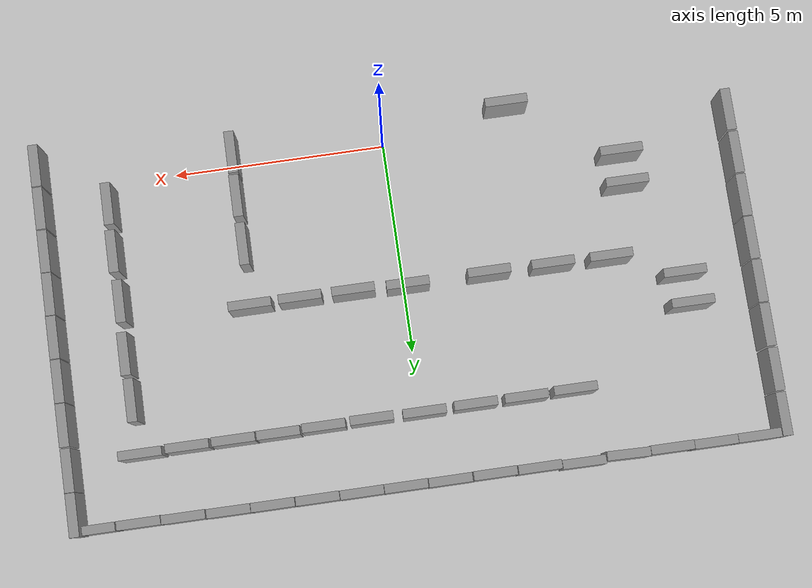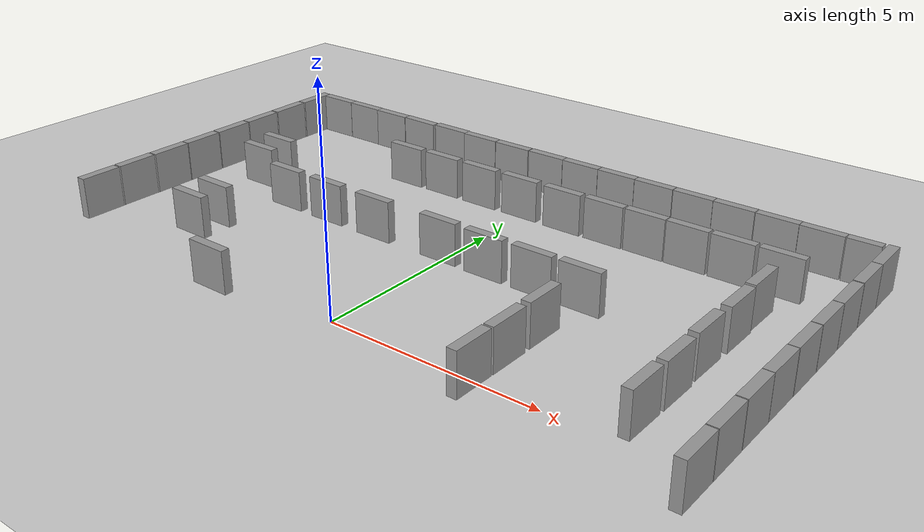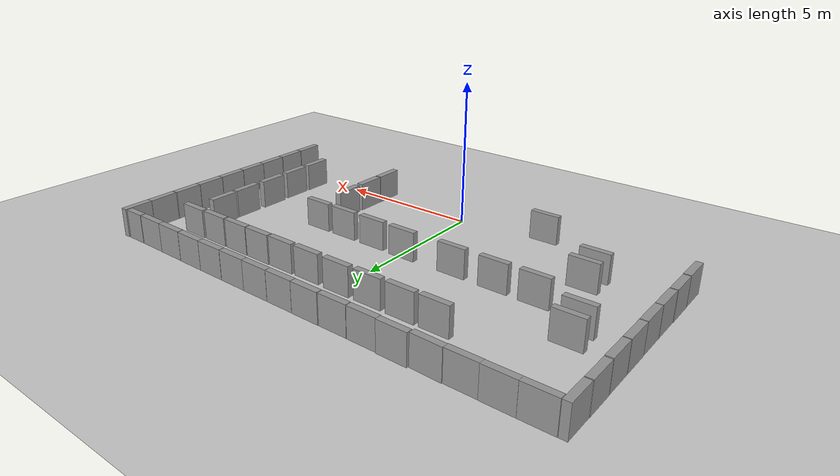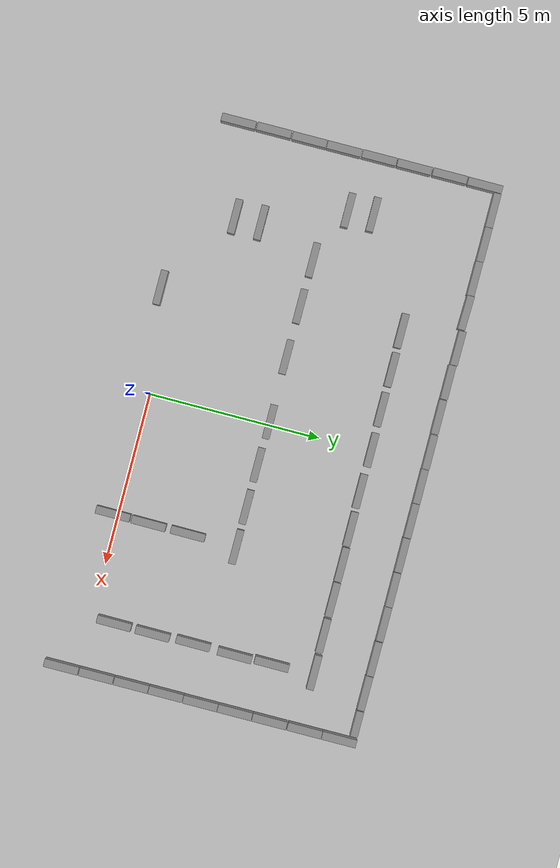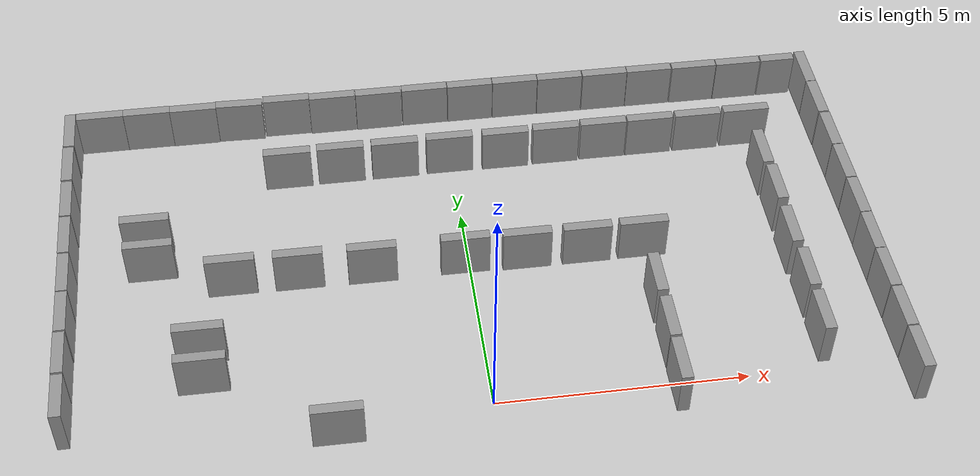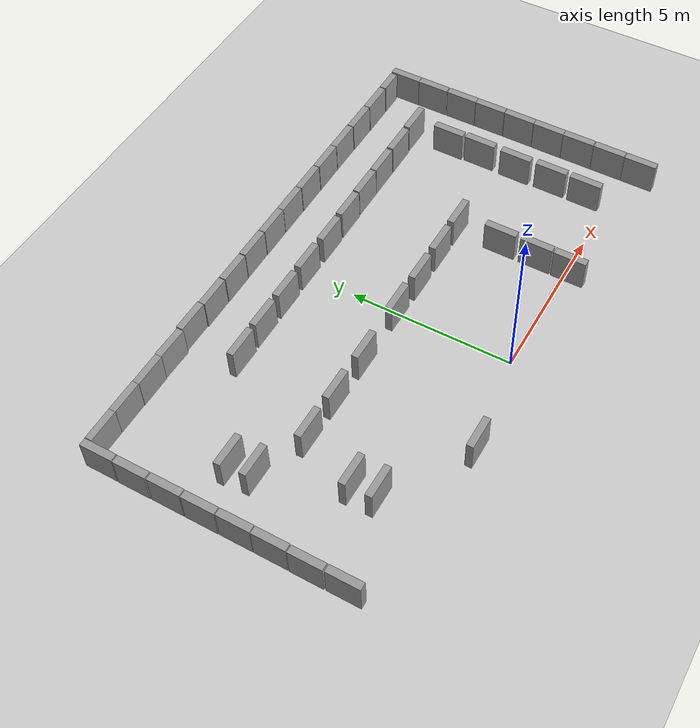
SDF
<sdf version="1.6">
 <world name="default">
  <model name="ground_plane">
   <static>1</static>
   <static>1</static>
   <link name="link">
    <collision name="collision">
     <geometry><plane><normal>0 0 1</normal><size>100 100</size></plane></geometry>
     <surface><friction><ode><mu>100</mu><mu2>50</mu2></ode></friction></surface>
    </collision>
    <visual name="visual">
     <cast_shadows>0</cast_shadows>
     <geometry><plane><normal>0 0 1</normal><size>100 100</size></plane></geometry>
     <material>
      <script><uri>file://media/materials/scripts/gazebo.material</uri><name>Gazebo/Grey</name></script>
     </material>
    </visual>
   </link>
  </model>
  <model name="unit_box_clone">
   <pose>-7.49845 8.12 0.5 0 -0 0.000368</pose>
   <link name="link">
    <inertial>
     <mass>1</mass>
     <inertia>
      <ixx>0.166667</ixx>
      <ixy>0</ixy>
      <ixz>0</ixz>
      <iyy>0.166667</iyy>
      <iyz>0</iyz>
      <izz>0.166667</izz>
     </inertia>
    </inertial>
    <collision name="collision"><geometry><box><size>1 0.210541 1</size></box></geometry></collision>
    <visual name="visual">
     <geometry><box><size>1 0.210541 1</size></box></geometry>
     <material>
      <script><name>Gazebo/Grey</name><uri>file://media/materials/scripts/gazebo.material</uri></script>
     </material>
    </visual>
   </link>
  </model>
  <model name="unit_box_clone_0">
   <pose>-6.49722 8.11979 0.5 0 -0 -0.00265</pose>
   <link name="link">
    <inertial>
     <mass>1</mass>
     <inertia>
      <ixx>0.166667</ixx>
      <ixy>0</ixy>
      <ixz>0</ixz>
      <iyy>0.166667</iyy>
      <iyz>0</iyz>
      <izz>0.166667</izz>
     </inertia>
    </inertial>
    <collision name="collision"><geometry><box><size>1 0.210541 1</size></box></geometry></collision>
    <visual name="visual">
     <geometry><box><size>1 0.210541 1</size></box></geometry>
     <material>
      <script><name>Gazebo/Grey</name><uri>file://media/materials/scripts/gazebo.material</uri></script>
     </material>
    </visual>
   </link>
  </model>
  <model name="unit_box_clone_1">
   <pose>-5.49725 8.10831 0.5 0 -0 -0.00265</pose>
   <link name="link">
    <inertial>
     <mass>1</mass>
     <inertia>
      <ixx>0.166667</ixx>
      <ixy>0</ixy>
      <ixz>0</ixz>
      <iyy>0.166667</iyy>
      <iyz>0</iyz>
      <izz>0.166667</izz>
     </inertia>
    </inertial>
    <collision name="collision"><geometry><box><size>1 0.210541 1</size></box></geometry></collision>
    <visual name="visual">
     <geometry><box><size>1 0.210541 1</size></box></geometry>
     <material>
      <script><name>Gazebo/Grey</name><uri>file://media/materials/scripts/gazebo.material</uri></script>
     </material>
    </visual>
   </link>
  </model>
  <model name="unit_box_clone_2">
   <pose>-4.49476 8.11056 0.5 0 -0 -0.026966</pose>
   <link name="link">
    <inertial>
     <mass>1</mass>
     <inertia>
      <ixx>0.166667</ixx>
      <ixy>0</ixy>
      <ixz>0</ixz>
      <iyy>0.166667</iyy>
      <iyz>0</iyz>
      <izz>0.166667</izz>
     </inertia>
    </inertial>
    <collision name="collision"><geometry><box><size>1 0.210541 1</size></box></geometry></collision>
    <visual name="visual">
     <geometry><box><size>1 0.210541 1</size></box></geometry>
     <material>
      <script><name>Gazebo/Grey</name><uri>file://media/materials/scripts/gazebo.material</uri></script>
     </material>
    </visual>
   </link>
  </model>
  <model name="unit_box_clone_3">
   <pose>-3.46833 8.14907 0.5 0 0 -0.008185</pose>
   <link name="link">
    <inertial>
     <mass>1</mass>
     <inertia>
      <ixx>0.166667</ixx>
      <ixy>0</ixy>
      <ixz>0</ixz>
      <iyy>0.166667</iyy>
      <iyz>0</iyz>
      <izz>0.166667</izz>
     </inertia>
    </inertial>
    <collision name="collision"><geometry><box><size>1 0.210541 1</size></box></geometry></collision>
    <visual name="visual">
     <geometry><box><size>1 0.210541 1</size></box></geometry>
     <material>
      <script><name>Gazebo/Grey</name><uri>file://media/materials/scripts/gazebo.material</uri></script>
     </material>
    </visual>
   </link>
  </model>
  <model name="unit_box_clone_4">
   <pose>-2.46316 8.11869 0.5 0 -0 0.000368</pose>
   <link name="link">
    <inertial>
     <mass>1</mass>
     <inertia>
      <ixx>0.166667</ixx>
      <ixy>0</ixy>
      <ixz>0</ixz>
      <iyy>0.166667</iyy>
      <iyz>0</iyz>
      <izz>0.166667</izz>
     </inertia>
    </inertial>
    <collision name="collision"><geometry><box><size>1 0.210541 1</size></box></geometry></collision>
    <visual name="visual">
     <geometry><box><size>1 0.210541 1</size></box></geometry>
     <material>
      <script><name>Gazebo/Grey</name><uri>file://media/materials/scripts/gazebo.material</uri></script>
     </material>
    </visual>
   </link>
  </model>
  <model name="unit_box_clone_5">
   <pose>-1.44425 8.11203 0.5 0 -0 0.000368</pose>
   <link name="link">
    <inertial>
     <mass>1</mass>
     <inertia>
      <ixx>0.166667</ixx>
      <ixy>0</ixy>
      <ixz>0</ixz>
      <iyy>0.166667</iyy>
      <iyz>0</iyz>
      <izz>0.166667</izz>
     </inertia>
    </inertial>
    <collision name="collision"><geometry><box><size>1 0.210541 1</size></box></geometry></collision>
    <visual name="visual">
     <geometry><box><size>1 0.210541 1</size></box></geometry>
     <material>
      <script><name>Gazebo/Grey</name><uri>file://media/materials/scripts/gazebo.material</uri></script>
     </material>
    </visual>
   </link>
  </model>
  <model name="unit_box_clone_6">
   <pose>-0.418678 8.11869 0.5 0 -0 0.000368</pose>
   <link name="link">
    <inertial>
     <mass>1</mass>
     <inertia>
      <ixx>0.166667</ixx>
      <ixy>0</ixy>
      <ixz>0</ixz>
      <iyy>0.166667</iyy>
      <iyz>0</iyz>
      <izz>0.166667</izz>
     </inertia>
    </inertial>
    <collision name="collision"><geometry><box><size>1 0.210541 1</size></box></geometry></collision>
    <visual name="visual">
     <geometry><box><size>1 0.210541 1</size></box></geometry>
     <material>
      <script><name>Gazebo/Grey</name><uri>file://media/materials/scripts/gazebo.material</uri></script>
     </material>
    </visual>
   </link>
  </model>
  <model name="unit_box_clone_7">
   <pose>0.592841 8.11155 0.5 0 -0 0.000368</pose>
   <link name="link">
    <inertial>
     <mass>1</mass>
     <inertia>
      <ixx>0.166667</ixx>
      <ixy>0</ixy>
      <ixz>0</ixz>
      <iyy>0.166667</iyy>
      <iyz>0</iyz>
      <izz>0.166667</izz>
     </inertia>
    </inertial>
    <collision name="collision"><geometry><box><size>1 0.210541 1</size></box></geometry></collision>
    <visual name="visual">
     <geometry><box><size>1 0.210541 1</size></box></geometry>
     <material>
      <script><name>Gazebo/Grey</name><uri>file://media/materials/scripts/gazebo.material</uri></script>
     </material>
    </visual>
   </link>
  </model>
  <model name="unit_box_clone_8">
   <pose>1.60043 8.11006 0.5 0 -0 0.000368</pose>
   <link name="link">
    <inertial>
     <mass>1</mass>
     <inertia>
      <ixx>0.166667</ixx>
      <ixy>0</ixy>
      <ixz>0</ixz>
      <iyy>0.166667</iyy>
      <iyz>0</iyz>
      <izz>0.166667</izz>
     </inertia>
    </inertial>
    <collision name="collision"><geometry><box><size>1 0.210541 1</size></box></geometry></collision>
    <visual name="visual">
     <geometry><box><size>1 0.210541 1</size></box></geometry>
     <material>
      <script><name>Gazebo/Grey</name><uri>file://media/materials/scripts/gazebo.material</uri></script>
     </material>
    </visual>
   </link>
  </model>
  <model name="unit_box_clone_9">
   <pose>2.60987 8.10287 0.5 0 -0 0.000368</pose>
   <link name="link">
    <inertial>
     <mass>1</mass>
     <inertia>
      <ixx>0.166667</ixx>
      <ixy>0</ixy>
      <ixz>0</ixz>
      <iyy>0.166667</iyy>
      <iyz>0</iyz>
      <izz>0.166667</izz>
     </inertia>
    </inertial>
    <collision name="collision"><geometry><box><size>1 0.210541 1</size></box></geometry></collision>
    <visual name="visual">
     <geometry><box><size>1 0.210541 1</size></box></geometry>
     <material>
      <script><name>Gazebo/Grey</name><uri>file://media/materials/scripts/gazebo.material</uri></script>
     </material>
    </visual>
   </link>
  </model>
  <model name="unit_box_clone_10">
   <pose>3.62649 8.09929 0.5 0 -0 0.000368</pose>
   <link name="link">
    <inertial>
     <mass>1</mass>
     <inertia>
      <ixx>0.166667</ixx>
      <ixy>0</ixy>
      <ixz>0</ixz>
      <iyy>0.166667</iyy>
      <iyz>0</iyz>
      <izz>0.166667</izz>
     </inertia>
    </inertial>
    <collision name="collision"><geometry><box><size>1 0.210541 1</size></box></geometry></collision>
    <visual name="visual">
     <geometry><box><size>1 0.210541 1</size></box></geometry>
     <material>
      <script><name>Gazebo/Grey</name><uri>file://media/materials/scripts/gazebo.material</uri></script>
     </material>
    </visual>
   </link>
  </model>
  <model name="unit_box_clone_11">
   <pose>4.63309 8.09531 0.5 0 0 -0.002817</pose>
   <link name="link">
    <inertial>
     <mass>1</mass>
     <inertia>
      <ixx>0.166667</ixx>
      <ixy>0</ixy>
      <ixz>0</ixz>
      <iyy>0.166667</iyy>
      <iyz>0</iyz>
      <izz>0.166667</izz>
     </inertia>
    </inertial>
    <collision name="collision"><geometry><box><size>1 0.210541 1</size></box></geometry></collision>
    <visual name="visual">
     <geometry><box><size>1 0.210541 1</size></box></geometry>
     <material>
      <script><name>Gazebo/Grey</name><uri>file://media/materials/scripts/gazebo.material</uri></script>
     </material>
    </visual>
   </link>
  </model>
  <model name="unit_box_0_clone_0">
   <pose>8.11522 6.68459 0.5 1e-06 1e-06 -0.000267</pose>
   <link name="link">
    <inertial>
     <mass>1</mass>
     <inertia>
      <ixx>0.166667</ixx>
      <ixy>0</ixy>
      <ixz>0</ixz>
      <iyy>0.166667</iyy>
      <iyz>0</iyz>
      <izz>0.166667</izz>
     </inertia>
    </inertial>
    <collision name="collision"><geometry><box><size>0.230819 1 1</size></box></geometry></collision>
    <visual name="visual">
     <geometry><box><size>0.230819 1 1</size></box></geometry>
     <material>
      <script><name>Gazebo/Grey</name><uri>file://media/materials/scripts/gazebo.material</uri></script>
     </material>
    </visual>
   </link>
  </model>
  <model name="unit_box_0_clone_1">
   <pose>8.11915 5.6517 0.5 -1e-06 1e-06 0.000146</pose>
   <link name="link">
    <inertial>
     <mass>1</mass>
     <inertia>
      <ixx>0.166667</ixx>
      <ixy>0</ixy>
      <ixz>0</ixz>
      <iyy>0.166667</iyy>
      <iyz>0</iyz>
      <izz>0.166667</izz>
     </inertia>
    </inertial>
    <collision name="collision"><geometry><box><size>0.230819 1 1</size></box></geometry></collision>
    <visual name="visual">
     <geometry><box><size>0.230819 1 1</size></box></geometry>
     <material>
      <script><name>Gazebo/Grey</name><uri>file://media/materials/scripts/gazebo.material</uri></script>
     </material>
    </visual>
   </link>
  </model>
  <model name="unit_box_0_clone_2">
   <pose>8.11914 4.64016 0.5 -1e-06 1e-06 0.000162</pose>
   <link name="link">
    <inertial>
     <mass>1</mass>
     <inertia>
      <ixx>0.166667</ixx>
      <ixy>0</ixy>
      <ixz>0</ixz>
      <iyy>0.166667</iyy>
      <iyz>0</iyz>
      <izz>0.166667</izz>
     </inertia>
    </inertial>
    <collision name="collision"><geometry><box><size>0.230819 1 1</size></box></geometry></collision>
    <visual name="visual">
     <geometry><box><size>0.230819 1 1</size></box></geometry>
     <material>
      <script><name>Gazebo/Grey</name><uri>file://media/materials/scripts/gazebo.material</uri></script>
     </material>
    </visual>
   </link>
  </model>
  <model name="unit_box_0_clone_3">
   <pose>8.11914 3.62227 0.5 1e-06 1e-06 0.000127</pose>
   <link name="link">
    <inertial>
     <mass>1</mass>
     <inertia>
      <ixx>0.166667</ixx>
      <ixy>0</ixy>
      <ixz>0</ixz>
      <iyy>0.166667</iyy>
      <iyz>0</iyz>
      <izz>0.166667</izz>
     </inertia>
    </inertial>
    <collision name="collision"><geometry><box><size>0.230819 1 1</size></box></geometry></collision>
    <visual name="visual">
     <geometry><box><size>0.230819 1 1</size></box></geometry>
     <material>
      <script><name>Gazebo/Grey</name><uri>file://media/materials/scripts/gazebo.material</uri></script>
     </material>
    </visual>
   </link>
  </model>
  <model name="unit_box_0_clone_4">
   <pose>8.11332 2.61061 0.5 1e-06 1e-06 -0.001398</pose>
   <link name="link">
    <inertial>
     <mass>1</mass>
     <inertia>
      <ixx>0.166667</ixx>
      <ixy>0</ixy>
      <ixz>0</ixz>
      <iyy>0.166667</iyy>
      <iyz>0</iyz>
      <izz>0.166667</izz>
     </inertia>
    </inertial>
    <collision name="collision"><geometry><box><size>0.230819 1 1</size></box></geometry></collision>
    <visual name="visual">
     <geometry><box><size>0.230819 1 1</size></box></geometry>
     <material>
      <script><name>Gazebo/Grey</name><uri>file://media/materials/scripts/gazebo.material</uri></script>
     </material>
    </visual>
   </link>
  </model>
  <model name="unit_box_0_clone_5">
   <pose>8.11277 1.5992 0.5 1e-06 1e-06 0.000127</pose>
   <link name="link">
    <inertial>
     <mass>1</mass>
     <inertia>
      <ixx>0.166667</ixx>
      <ixy>0</ixy>
      <ixz>0</ixz>
      <iyy>0.166667</iyy>
      <iyz>0</iyz>
      <izz>0.166667</izz>
     </inertia>
    </inertial>
    <collision name="collision"><geometry><box><size>0.230819 1 1</size></box></geometry></collision>
    <visual name="visual">
     <geometry><box><size>0.230819 1 1</size></box></geometry>
     <material>
      <script><name>Gazebo/Grey</name><uri>file://media/materials/scripts/gazebo.material</uri></script>
     </material>
    </visual>
   </link>
  </model>
  <model name="unit_box_0_clone_6">
   <pose>8.11277 0.574934 0.5 1e-06 1e-06 0.000127</pose>
   <link name="link">
    <inertial>
     <mass>1</mass>
     <inertia>
      <ixx>0.166667</ixx>
      <ixy>0</ixy>
      <ixz>0</ixz>
      <iyy>0.166667</iyy>
      <iyz>0</iyz>
      <izz>0.166667</izz>
     </inertia>
    </inertial>
    <collision name="collision"><geometry><box><size>0.230819 1 1</size></box></geometry></collision>
    <visual name="visual">
     <geometry><box><size>0.230819 1 1</size></box></geometry>
     <material>
      <script><name>Gazebo/Grey</name><uri>file://media/materials/scripts/gazebo.material</uri></script>
     </material>
    </visual>
   </link>
  </model>
  <model name="unit_box_0_clone_7">
   <pose>8.11276 -0.449324 0.5 1e-06 1e-06 0.000127</pose>
   <link name="link">
    <inertial>
     <mass>1</mass>
     <inertia>
      <ixx>0.166667</ixx>
      <ixy>0</ixy>
      <ixz>0</ixz>
      <iyy>0.166667</iyy>
      <iyz>0</iyz>
      <izz>0.166667</izz>
     </inertia>
    </inertial>
    <collision name="collision"><geometry><box><size>0.230819 1 1</size></box></geometry></collision>
    <visual name="visual">
     <geometry><box><size>0.230819 1 1</size></box></geometry>
     <material>
      <script><name>Gazebo/Grey</name><uri>file://media/materials/scripts/gazebo.material</uri></script>
     </material>
    </visual>
   </link>
  </model>
  <model name="unit_box_0_clone_4_clone">
   <pose>-8.12647 7.71769 0.5 1e-06 1e-06 0.000127</pose>
   <link name="link">
    <inertial>
     <mass>1</mass>
     <inertia>
      <ixx>0.166667</ixx>
      <ixy>0</ixy>
      <ixz>0</ixz>
      <iyy>0.166667</iyy>
      <iyz>0</iyz>
      <izz>0.166667</izz>
     </inertia>
    </inertial>
    <collision name="collision"><geometry><box><size>0.230819 1 1</size></box></geometry></collision>
    <visual name="visual">
     <geometry><box><size>0.230819 1 1</size></box></geometry>
     <material>
      <script><name>Gazebo/Grey</name><uri>file://media/materials/scripts/gazebo.material</uri></script>
     </material>
    </visual>
   </link>
  </model>
  <model name="unit_box_0_clone_4_clone_0">
   <pose>-8.13281 6.68715 0.5 1e-06 1e-06 0.000127</pose>
   <link name="link">
    <inertial>
     <mass>1</mass>
     <inertia>
      <ixx>0.166667</ixx>
      <ixy>0</ixy>
      <ixz>0</ixz>
      <iyy>0.166667</iyy>
      <iyz>0</iyz>
      <izz>0.166667</izz>
     </inertia>
    </inertial>
    <collision name="collision"><geometry><box><size>0.230819 1 1</size></box></geometry></collision>
    <visual name="visual">
     <geometry><box><size>0.230819 1 1</size></box></geometry>
     <material>
      <script><name>Gazebo/Grey</name><uri>file://media/materials/scripts/gazebo.material</uri></script>
     </material>
    </visual>
   </link>
  </model>
  <model name="unit_box_0_clone_4_clone_1">
   <pose>-8.12606 5.64723 0.5 1e-06 1e-06 0.000127</pose>
   <link name="link">
    <inertial>
     <mass>1</mass>
     <inertia>
      <ixx>0.166667</ixx>
      <ixy>0</ixy>
      <ixz>0</ixz>
      <iyy>0.166667</iyy>
      <iyz>0</iyz>
      <izz>0.166667</izz>
     </inertia>
    </inertial>
    <collision name="collision"><geometry><box><size>0.230819 1 1</size></box></geometry></collision>
    <visual name="visual">
     <geometry><box><size>0.230819 1 1</size></box></geometry>
     <material>
      <script><name>Gazebo/Grey</name><uri>file://media/materials/scripts/gazebo.material</uri></script>
     </material>
    </visual>
   </link>
  </model>
  <model name="unit_box_0_clone_4_clone_2">
   <pose>-8.12607 4.62081 0.5 1e-06 1e-06 0.000127</pose>
   <link name="link">
    <inertial>
     <mass>1</mass>
     <inertia>
      <ixx>0.166667</ixx>
      <ixy>0</ixy>
      <ixz>0</ixz>
      <iyy>0.166667</iyy>
      <iyz>0</iyz>
      <izz>0.166667</izz>
     </inertia>
    </inertial>
    <collision name="collision"><geometry><box><size>0.230819 1 1</size></box></geometry></collision>
    <visual name="visual">
     <geometry><box><size>0.230819 1 1</size></box></geometry>
     <material>
      <script><name>Gazebo/Grey</name><uri>file://media/materials/scripts/gazebo.material</uri></script>
     </material>
    </visual>
   </link>
  </model>
  <model name="unit_box_0_clone_4_clone_3">
   <pose>-8.11932 3.59439 0.5 1e-06 1e-06 0.000127</pose>
   <link name="link">
    <inertial>
     <mass>1</mass>
     <inertia>
      <ixx>0.166667</ixx>
      <ixy>0</ixy>
      <ixz>0</ixz>
      <iyy>0.166667</iyy>
      <iyz>0</iyz>
      <izz>0.166667</izz>
     </inertia>
    </inertial>
    <collision name="collision"><geometry><box><size>0.230819 1 1</size></box></geometry></collision>
    <visual name="visual">
     <geometry><box><size>0.230819 1 1</size></box></geometry>
     <material>
      <script><name>Gazebo/Grey</name><uri>file://media/materials/scripts/gazebo.material</uri></script>
     </material>
    </visual>
   </link>
  </model>
  <model name="unit_box_0_clone_4_clone_4">
   <pose>-8.11932 2.57473 0.5 1e-06 1e-06 0.000127</pose>
   <link name="link">
    <inertial>
     <mass>1</mass>
     <inertia>
      <ixx>0.166667</ixx>
      <ixy>0</ixy>
      <ixz>0</ixz>
      <iyy>0.166667</iyy>
      <iyz>0</iyz>
      <izz>0.166667</izz>
     </inertia>
    </inertial>
    <collision name="collision"><geometry><box><size>0.230819 1 1</size></box></geometry></collision>
    <visual name="visual">
     <geometry><box><size>0.230819 1 1</size></box></geometry>
     <material>
      <script><name>Gazebo/Grey</name><uri>file://media/materials/scripts/gazebo.material</uri></script>
     </material>
    </visual>
   </link>
  </model>
  <model name="unit_box_0_clone_4_clone_5">
   <pose>-8.12608 1.54156 0.5 1e-06 1e-06 0.000127</pose>
   <link name="link">
    <inertial>
     <mass>1</mass>
     <inertia>
      <ixx>0.166667</ixx>
      <ixy>0</ixy>
      <ixz>0</ixz>
      <iyy>0.166667</iyy>
      <iyz>0</iyz>
      <izz>0.166667</izz>
     </inertia>
    </inertial>
    <collision name="collision"><geometry><box><size>0.230819 1 1</size></box></geometry></collision>
    <visual name="visual">
     <geometry><box><size>0.230819 1 1</size></box></geometry>
     <material>
      <script><name>Gazebo/Grey</name><uri>file://media/materials/scripts/gazebo.material</uri></script>
     </material>
    </visual>
   </link>
  </model>
  <model name="unit_box_0_clone_4_clone_6">
   <pose>-8.11933 0.501626 0.5 1e-06 1e-06 0.000127</pose>
   <link name="link">
    <inertial>
     <mass>1</mass>
     <inertia>
      <ixx>0.166667</ixx>
      <ixy>0</ixy>
      <ixz>0</ixz>
      <iyy>0.166667</iyy>
      <iyz>0</iyz>
      <izz>0.166667</izz>
     </inertia>
    </inertial>
    <collision name="collision"><geometry><box><size>0.230819 1 1</size></box></geometry></collision>
    <visual name="visual">
     <geometry><box><size>0.230819 1 1</size></box></geometry>
     <material>
      <script><name>Gazebo/Grey</name><uri>file://media/materials/scripts/gazebo.material</uri></script>
     </material>
    </visual>
   </link>
  </model>
  <model name="unit_box_0_clone_0_clone">
   <pose>8.11438 7.69322 0.5 -1e-06 1e-06 0.000128</pose>
   <link name="link">
    <inertial>
     <mass>1</mass>
     <inertia>
      <ixx>0.166667</ixx>
      <ixy>0</ixy>
      <ixz>0</ixz>
      <iyy>0.166667</iyy>
      <iyz>0</iyz>
      <izz>0.166667</izz>
     </inertia>
    </inertial>
    <collision name="collision"><geometry><box><size>0.230819 1 1</size></box></geometry></collision>
    <visual name="visual">
     <geometry><box><size>0.230819 1 1</size></box></geometry>
     <material>
      <script><name>Gazebo/Grey</name><uri>file://media/materials/scripts/gazebo.material</uri></script>
     </material>
    </visual>
   </link>
  </model>
  <model name="unit_box_clone_11_clone">
   <pose>5.65439 8.08315 0.5 0 0 -0.00319</pose>
   <link name="link">
    <inertial>
     <mass>1</mass>
     <inertia>
      <ixx>0.166667</ixx>
      <ixy>0</ixy>
      <ixz>0</ixz>
      <iyy>0.166667</iyy>
      <iyz>0</iyz>
      <izz>0.166667</izz>
     </inertia>
    </inertial>
    <collision name="collision"><geometry><box><size>1 0.210541 1</size></box></geometry></collision>
    <visual name="visual">
     <geometry><box><size>1 0.210541 1</size></box></geometry>
     <material>
      <script><name>Gazebo/Grey</name><uri>file://media/materials/scripts/gazebo.material</uri></script>
     </material>
    </visual>
   </link>
  </model>
  <model name="unit_box_clone_11_clone_0">
   <pose>6.6644 8.0733 0.5 -0 -0 -0.003093</pose>
   <link name="link">
    <inertial>
     <mass>1</mass>
     <inertia>
      <ixx>0.166667</ixx>
      <ixy>0</ixy>
      <ixz>0</ixz>
      <iyy>0.166667</iyy>
      <iyz>0</iyz>
      <izz>0.166667</izz>
     </inertia>
    </inertial>
    <collision name="collision"><geometry><box><size>1 0.210541 1</size></box></geometry></collision>
    <visual name="visual">
     <geometry><box><size>1 0.210541 1</size></box></geometry>
     <material>
      <script><name>Gazebo/Grey</name><uri>file://media/materials/scripts/gazebo.material</uri></script>
     </material>
    </visual>
   </link>
  </model>
  <model name="unit_box_clone_11_clone_1_clone">
   <pose>7.56437 8.07322 0.499997 2e-06 -8e-06 0.001439</pose>
   <link name="link">
    <inertial>
     <mass>1</mass>
     <inertia>
      <ixx>0.166667</ixx>
      <ixy>0</ixy>
      <ixz>0</ixz>
      <iyy>0.166667</iyy>
      <iyz>0</iyz>
      <izz>0.166667</izz>
     </inertia>
    </inertial>
    <collision name="collision"><geometry><box><size>0.750223 0.210541 1</size></box></geometry></collision>
    <visual name="visual">
     <geometry><box><size>0.750223 0.210541 1</size></box></geometry>
     <material>
      <script><name>Gazebo/Grey</name><uri>file://media/materials/scripts/gazebo.material</uri></script>
     </material>
    </visual>
   </link>
  </model>
  <model name="unit_box_clone_11_clone_clone">
   <pose>6.45565 6.53019 0.5 -0 -0 -0.003103</pose>
   <link name="link">
    <inertial>
     <mass>1</mass>
     <inertia>
      <ixx>0.166667</ixx>
      <ixy>0</ixy>
      <ixz>0</ixz>
      <iyy>0.166667</iyy>
      <iyz>0</iyz>
      <izz>0.166667</izz>
     </inertia>
    </inertial>
    <collision name="collision"><geometry><box><size>1 0.210541 1</size></box></geometry></collision>
    <visual name="visual">
     <geometry><box><size>1 0.210541 1</size></box></geometry>
     <material>
      <script><name>Gazebo/Grey</name><uri>file://media/materials/scripts/gazebo.material</uri></script>
     </material>
    </visual>
   </link>
  </model>
  <model name="unit_box_clone_11_clone_clone_0">
   <pose>5.38299 6.51467 0.5 0 0 -0.003162</pose>
   <link name="link">
    <inertial>
     <mass>1</mass>
     <inertia>
      <ixx>0.166667</ixx>
      <ixy>0</ixy>
      <ixz>0</ixz>
      <iyy>0.166667</iyy>
      <iyz>0</iyz>
      <izz>0.166667</izz>
     </inertia>
    </inertial>
    <collision name="collision"><geometry><box><size>1 0.210541 1</size></box></geometry></collision>
    <visual name="visual">
     <geometry><box><size>1 0.210541 1</size></box></geometry>
     <material>
      <script><name>Gazebo/Grey</name><uri>file://media/materials/scripts/gazebo.material</uri></script>
     </material>
    </visual>
   </link>
  </model>
  <model name="unit_box_clone_11_clone_clone_1">
   <pose>4.32587 6.51468 0.5 -0 -0 -0.003062</pose>
   <link name="link">
    <inertial>
     <mass>1</mass>
     <inertia>
      <ixx>0.166667</ixx>
      <ixy>0</ixy>
      <ixz>0</ixz>
      <iyy>0.166667</iyy>
      <iyz>0</iyz>
      <izz>0.166667</izz>
     </inertia>
    </inertial>
    <collision name="collision"><geometry><box><size>1 0.210541 1</size></box></geometry></collision>
    <visual name="visual">
     <geometry><box><size>1 0.210541 1</size></box></geometry>
     <material>
      <script><name>Gazebo/Grey</name><uri>file://media/materials/scripts/gazebo.material</uri></script>
     </material>
    </visual>
   </link>
  </model>
  <model name="unit_box_clone_11_clone_clone_2">
   <pose>3.29984 6.51466 0.5 -0 -0 -0.003236</pose>
   <link name="link">
    <inertial>
     <mass>1</mass>
     <inertia>
      <ixx>0.166667</ixx>
      <ixy>0</ixy>
      <ixz>0</ixz>
      <iyy>0.166667</iyy>
      <iyz>0</iyz>
      <izz>0.166667</izz>
     </inertia>
    </inertial>
    <collision name="collision"><geometry><box><size>1 0.210541 1</size></box></geometry></collision>
    <visual name="visual">
     <geometry><box><size>1 0.210541 1</size></box></geometry>
     <material>
      <script><name>Gazebo/Grey</name><uri>file://media/materials/scripts/gazebo.material</uri></script>
     </material>
    </visual>
   </link>
  </model>
  <model name="unit_box_clone_11_clone_clone_3">
   <pose>2.25828 6.4991 0.5 0 0 -0.003047</pose>
   <link name="link">
    <inertial>
     <mass>1</mass>
     <inertia>
      <ixx>0.166667</ixx>
      <ixy>0</ixy>
      <ixz>0</ixz>
      <iyy>0.166667</iyy>
      <iyz>0</iyz>
      <izz>0.166667</izz>
     </inertia>
    </inertial>
    <collision name="collision"><geometry><box><size>1 0.210541 1</size></box></geometry></collision>
    <visual name="visual">
     <geometry><box><size>1 0.210541 1</size></box></geometry>
     <material>
      <script><name>Gazebo/Grey</name><uri>file://media/materials/scripts/gazebo.material</uri></script>
     </material>
    </visual>
   </link>
  </model>
  <model name="unit_box_clone_11_clone_clone_4">
   <pose>1.15453 6.48355 0.5 0 0 -0.003067</pose>
   <link name="link">
    <inertial>
     <mass>1</mass>
     <inertia>
      <ixx>0.166667</ixx>
      <ixy>0</ixy>
      <ixz>0</ixz>
      <iyy>0.166667</iyy>
      <iyz>0</iyz>
      <izz>0.166667</izz>
     </inertia>
    </inertial>
    <collision name="collision"><geometry><box><size>1 0.210541 1</size></box></geometry></collision>
    <visual name="visual">
     <geometry><box><size>1 0.210541 1</size></box></geometry>
     <material>
      <script><name>Gazebo/Grey</name><uri>file://media/materials/scripts/gazebo.material</uri></script>
     </material>
    </visual>
   </link>
  </model>
  <model name="unit_box_clone_11_clone_clone_5">
   <pose>-0.058049 6.49917 0.5 0 -0 -0.003116</pose>
   <link name="link">
    <inertial>
     <mass>1</mass>
     <inertia>
      <ixx>0.166667</ixx>
      <ixy>0</ixy>
      <ixz>0</ixz>
      <iyy>0.166667</iyy>
      <iyz>0</iyz>
      <izz>0.166667</izz>
     </inertia>
    </inertial>
    <collision name="collision"><geometry><box><size>1 0.210541 1</size></box></geometry></collision>
    <visual name="visual">
     <geometry><box><size>1 0.210541 1</size></box></geometry>
     <material>
      <script><name>Gazebo/Grey</name><uri>file://media/materials/scripts/gazebo.material</uri></script>
     </material>
    </visual>
   </link>
  </model>
  <model name="unit_box_clone_11_clone_clone_6">
   <pose>-1.23953 6.48361 0.5 0 0 -0.003163</pose>
   <link name="link">
    <inertial>
     <mass>1</mass>
     <inertia>
      <ixx>0.166667</ixx>
      <ixy>0</ixy>
      <ixz>0</ixz>
      <iyy>0.166667</iyy>
      <iyz>0</iyz>
      <izz>0.166667</izz>
     </inertia>
    </inertial>
    <collision name="collision"><geometry><box><size>1 0.210541 1</size></box></geometry></collision>
    <visual name="visual">
     <geometry><box><size>1 0.210541 1</size></box></geometry>
     <material>
      <script><name>Gazebo/Grey</name><uri>file://media/materials/scripts/gazebo.material</uri></script>
     </material>
    </visual>
   </link>
  </model>
  <model name="unit_box_clone_11_clone_clone_7">
   <pose>-2.40547 6.48363 0.5 -0 -0 -0.003058</pose>
   <link name="link">
    <inertial>
     <mass>1</mass>
     <inertia>
      <ixx>0.166667</ixx>
      <ixy>0</ixy>
      <ixz>0</ixz>
      <iyy>0.166667</iyy>
      <iyz>0</iyz>
      <izz>0.166667</izz>
     </inertia>
    </inertial>
    <collision name="collision"><geometry><box><size>1 0.210541 1</size></box></geometry></collision>
    <visual name="visual">
     <geometry><box><size>1 0.210541 1</size></box></geometry>
     <material>
      <script><name>Gazebo/Grey</name><uri>file://media/materials/scripts/gazebo.material</uri></script>
     </material>
    </visual>
   </link>
  </model>
  <model name="unit_box_clone_11_clone_clone_8">
   <pose>-3.54032 6.46807 0.5 -0 -0 -0.003114</pose>
   <link name="link">
    <inertial>
     <mass>1</mass>
     <inertia>
      <ixx>0.166667</ixx>
      <ixy>0</ixy>
      <ixz>0</ixz>
      <iyy>0.166667</iyy>
      <iyz>0</iyz>
      <izz>0.166667</izz>
     </inertia>
    </inertial>
    <collision name="collision"><geometry><box><size>1 0.210541 1</size></box></geometry></collision>
    <visual name="visual">
     <geometry><box><size>1 0.210541 1</size></box></geometry>
     <material>
      <script><name>Gazebo/Grey</name><uri>file://media/materials/scripts/gazebo.material</uri></script>
     </material>
    </visual>
   </link>
  </model>
  <model name="unit_box_0_clone_13_clone">
   <pose>6.53015 5.30329 0.499998 -4e-06 -0 -0.005553</pose>
   <link name="link">
    <inertial>
     <mass>1</mass>
     <inertia>
      <ixx>0.166667</ixx>
      <ixy>0</ixy>
      <ixz>0</ixz>
      <iyy>0.166667</iyy>
      <iyz>0</iyz>
      <izz>0.166667</izz>
     </inertia>
    </inertial>
    <collision name="collision"><geometry><box><size>0.230819 1 1</size></box></geometry></collision>
    <visual name="visual">
     <geometry><box><size>0.230819 1 1</size></box></geometry>
     <material>
      <script><name>Gazebo/Grey</name><uri>file://media/materials/scripts/gazebo.material</uri></script>
     </material>
    </visual>
   </link>
  </model>
  <model name="unit_box_0_clone_13_clone_0">
   <pose>6.55676 4.22554 0.499998 -4e-06 0 -0.005523</pose>
   <link name="link">
    <inertial>
     <mass>1</mass>
     <inertia>
      <ixx>0.166667</ixx>
      <ixy>0</ixy>
      <ixz>0</ixz>
      <iyy>0.166667</iyy>
      <iyz>0</iyz>
      <izz>0.166667</izz>
     </inertia>
    </inertial>
    <collision name="collision"><geometry><box><size>0.230819 1 1</size></box></geometry></collision>
    <visual name="visual">
     <geometry><box><size>0.230819 1 1</size></box></geometry>
     <material>
      <script><name>Gazebo/Grey</name><uri>file://media/materials/scripts/gazebo.material</uri></script>
     </material>
    </visual>
   </link>
  </model>
  <model name="unit_box_0_clone_13_clone_1">
   <pose>6.53014 3 0.5 1e-06 -1e-06 -0.005523</pose>
   <link name="link">
    <inertial>
     <mass>1</mass>
     <inertia>
      <ixx>0.166667</ixx>
      <ixy>0</ixy>
      <ixz>0</ixz>
      <iyy>0.166667</iyy>
      <iyz>0</iyz>
      <izz>0.166667</izz>
     </inertia>
    </inertial>
    <collision name="collision"><geometry><box><size>0.230819 1 1</size></box></geometry></collision>
    <visual name="visual">
     <geometry><box><size>0.230819 1 1</size></box></geometry>
     <material>
      <script><name>Gazebo/Grey</name><uri>file://media/materials/scripts/gazebo.material</uri></script>
     </material>
    </visual>
   </link>
  </model>
  <model name="unit_box_0_clone_13_clone_2">
   <pose>6.55675 1.81724 0.5 1e-06 -1e-06 -0.00555</pose>
   <link name="link">
    <inertial>
     <mass>1</mass>
     <inertia>
      <ixx>0.166667</ixx>
      <ixy>0</ixy>
      <ixz>0</ixz>
      <iyy>0.166667</iyy>
      <iyz>0</iyz>
      <izz>0.166667</izz>
     </inertia>
    </inertial>
    <collision name="collision"><geometry><box><size>0.230819 1 1</size></box></geometry></collision>
    <visual name="visual">
     <geometry><box><size>0.230819 1 1</size></box></geometry>
     <material>
      <script><name>Gazebo/Grey</name><uri>file://media/materials/scripts/gazebo.material</uri></script>
     </material>
    </visual>
   </link>
  </model>
  <model name="unit_box_0_clone_13_clone_3">
   <pose>6.54343 0.686271 0.5 1e-06 1e-06 -0.005373</pose>
   <link name="link">
    <inertial>
     <mass>1</mass>
     <inertia>
      <ixx>0.166667</ixx>
      <ixy>0</ixy>
      <ixz>0</ixz>
      <iyy>0.166667</iyy>
      <iyz>0</iyz>
      <izz>0.166667</izz>
     </inertia>
    </inertial>
    <collision name="collision"><geometry><box><size>0.230819 1 1</size></box></geometry></collision>
    <visual name="visual">
     <geometry><box><size>0.230819 1 1</size></box></geometry>
     <material>
      <script><name>Gazebo/Grey</name><uri>file://media/materials/scripts/gazebo.material</uri></script>
     </material>
    </visual>
   </link>
  </model>
  <model name="unit_box_clone_11_clone_clone_9_clone">
   <pose>-4.8491 3.5298 0.5 -0 -0 -0.003127</pose>
   <link name="link">
    <inertial>
     <mass>1</mass>
     <inertia>
      <ixx>0.166667</ixx>
      <ixy>0</ixy>
      <ixz>0</ixz>
      <iyy>0.166667</iyy>
      <iyz>0</iyz>
      <izz>0.166667</izz>
     </inertia>
    </inertial>
    <collision name="collision"><geometry><box><size>1 0.210541 1</size></box></geometry></collision>
    <visual name="visual">
     <geometry><box><size>1 0.210541 1</size></box></geometry>
     <material>
      <script><name>Gazebo/Grey</name><uri>file://media/materials/scripts/gazebo.material</uri></script>
     </material>
    </visual>
   </link>
  </model>
  <model name="unit_box_clone_11_clone_clone_9_clone_0">
   <pose>-3.48816 3.51424 0.5 -0 -0 -0.002966</pose>
   <link name="link">
    <inertial>
     <mass>1</mass>
     <inertia>
      <ixx>0.166667</ixx>
      <ixy>0</ixy>
      <ixz>0</ixz>
      <iyy>0.166667</iyy>
      <iyz>0</iyz>
      <izz>0.166667</izz>
     </inertia>
    </inertial>
    <collision name="collision"><geometry><box><size>1 0.210541 1</size></box></geometry></collision>
    <visual name="visual">
     <geometry><box><size>1 0.210541 1</size></box></geometry>
     <material>
      <script><name>Gazebo/Grey</name><uri>file://media/materials/scripts/gazebo.material</uri></script>
     </material>
    </visual>
   </link>
  </model>
  <model name="unit_box_clone_11_clone_clone_9_clone_1">
   <pose>-2 3.49891 0.5 0 -0 -0.003248</pose>
   <link name="link">
    <inertial>
     <mass>1</mass>
     <inertia>
      <ixx>0.166667</ixx>
      <ixy>0</ixy>
      <ixz>0</ixz>
      <iyy>0.166667</iyy>
      <iyz>0</iyz>
      <izz>0.166667</izz>
     </inertia>
    </inertial>
    <collision name="collision"><geometry><box><size>1 0.210541 1</size></box></geometry></collision>
    <visual name="visual">
     <geometry><box><size>1 0.210541 1</size></box></geometry>
     <material>
      <script><name>Gazebo/Grey</name><uri>file://media/materials/scripts/gazebo.material</uri></script>
     </material>
    </visual>
   </link>
  </model>
  <model name="unit_box_clone_11_clone_clone_9_clone_2">
   <pose>-0.101257 3.5143 0.5 0 0 -0.003117</pose>
   <link name="link">
    <inertial>
     <mass>1</mass>
     <inertia>
      <ixx>0.166667</ixx>
      <ixy>0</ixy>
      <ixz>0</ixz>
      <iyy>0.166667</iyy>
      <iyz>0</iyz>
      <izz>0.166667</izz>
     </inertia>
    </inertial>
    <collision name="collision"><geometry><box><size>1 0.210541 1</size></box></geometry></collision>
    <visual name="visual">
     <geometry><box><size>1 0.210541 1</size></box></geometry>
     <material>
      <script><name>Gazebo/Grey</name><uri>file://media/materials/scripts/gazebo.material</uri></script>
     </material>
    </visual>
   </link>
  </model>
  <model name="unit_box_clone_11_clone_clone_9_clone_3">
   <pose>1.1669 3.48341 0.5 0 0 -0.00299</pose>
   <link name="link">
    <inertial>
     <mass>1</mass>
     <inertia>
      <ixx>0.166667</ixx>
      <ixy>0</ixy>
      <ixz>0</ixz>
      <iyy>0.166667</iyy>
      <iyz>0</iyz>
      <izz>0.166667</izz>
     </inertia>
    </inertial>
    <collision name="collision"><geometry><box><size>1 0.210541 1</size></box></geometry></collision>
    <visual name="visual">
     <geometry><box><size>1 0.210541 1</size></box></geometry>
     <material>
      <script><name>Gazebo/Grey</name><uri>file://media/materials/scripts/gazebo.material</uri></script>
     </material>
    </visual>
   </link>
  </model>
  <model name="unit_box_clone_11_clone_clone_9_clone_4">
   <pose>2.40412 3.48333 0.5 0 -0 -0.003122</pose>
   <link name="link">
    <inertial>
     <mass>1</mass>
     <inertia>
      <ixx>0.166667</ixx>
      <ixy>0</ixy>
      <ixz>0</ixz>
      <iyy>0.166667</iyy>
      <iyz>0</iyz>
      <izz>0.166667</izz>
     </inertia>
    </inertial>
    <collision name="collision"><geometry><box><size>1 0.210541 1</size></box></geometry></collision>
    <visual name="visual">
     <geometry><box><size>1 0.210541 1</size></box></geometry>
     <material>
      <script><name>Gazebo/Grey</name><uri>file://media/materials/scripts/gazebo.material</uri></script>
     </material>
    </visual>
   </link>
  </model>
  <model name="unit_box_clone_11_clone_clone_9_clone_5">
   <pose>3.56875 3.48935 0.5 0 -0 -0.003249</pose>
   <link name="link">
    <inertial>
     <mass>1</mass>
     <inertia>
      <ixx>0.166667</ixx>
      <ixy>0</ixy>
      <ixz>0</ixz>
      <iyy>0.166667</iyy>
      <iyz>0</iyz>
      <izz>0.166667</izz>
     </inertia>
    </inertial>
    <collision name="collision"><geometry><box><size>1 0.210541 1</size></box></geometry></collision>
    <visual name="visual">
     <geometry><box><size>1 0.210541 1</size></box></geometry>
     <material>
      <script><name>Gazebo/Grey</name><uri>file://media/materials/scripts/gazebo.material</uri></script>
     </material>
    </visual>
   </link>
  </model>
  <model name="unit_box_0_clone_13_clone_2_clone">
   <pose>3.55747 2.06875 0.499998 4e-06 -0 -0.005516</pose>
   <link name="link">
    <inertial>
     <mass>1</mass>
     <inertia>
      <ixx>0.166667</ixx>
      <ixy>0</ixy>
      <ixz>0</ixz>
      <iyy>0.166667</iyy>
      <iyz>0</iyz>
      <izz>0.166667</izz>
     </inertia>
    </inertial>
    <collision name="collision"><geometry><box><size>0.230819 1 1</size></box></geometry></collision>
    <visual name="visual">
     <geometry><box><size>0.230819 1 1</size></box></geometry>
     <material>
      <script><name>Gazebo/Grey</name><uri>file://media/materials/scripts/gazebo.material</uri></script>
     </material>
    </visual>
   </link>
  </model>
  <model name="unit_box_0_clone_13_clone_2_clone_0">
   <pose>3.55746 0.918783 0.5 -1e-06 -1e-06 -0.005454</pose>
   <link name="link">
    <inertial>
     <mass>1</mass>
     <inertia>
      <ixx>0.166667</ixx>
      <ixy>0</ixy>
      <ixz>0</ixz>
      <iyy>0.166667</iyy>
      <iyz>0</iyz>
      <izz>0.166667</izz>
     </inertia>
    </inertial>
    <collision name="collision"><geometry><box><size>0.230819 1 1</size></box></geometry></collision>
    <visual name="visual">
     <geometry><box><size>0.230819 1 1</size></box></geometry>
     <material>
      <script><name>Gazebo/Grey</name><uri>file://media/materials/scripts/gazebo.material</uri></script>
     </material>
    </visual>
   </link>
  </model>
  <model name="unit_box_0_clone_13_clone_2_clone_1">
   <pose>3.54618 -0.129719 0.499998 4e-06 -0 -0.005647</pose>
   <link name="link">
    <inertial>
     <mass>1</mass>
     <inertia>
      <ixx>0.166667</ixx>
      <ixy>0</ixy>
      <ixz>0</ixz>
      <iyy>0.166667</iyy>
      <iyz>0</iyz>
      <izz>0.166667</izz>
     </inertia>
    </inertial>
    <collision name="collision"><geometry><box><size>0.230819 1 1</size></box></geometry></collision>
    <visual name="visual">
     <geometry><box><size>0.230819 1 1</size></box></geometry>
     <material>
      <script><name>Gazebo/Grey</name><uri>file://media/materials/scripts/gazebo.material</uri></script>
     </material>
    </visual>
   </link>
  </model>
  <model name="unit_box_clone_11_clone_clone_9_clone_clone_0">
   <pose>-3.00073 -0.451867 0.5 0 0 -0.003213</pose>
   <link name="link">
    <inertial>
     <mass>1</mass>
     <inertia>
      <ixx>0.166667</ixx>
      <ixy>0</ixy>
      <ixz>0</ixz>
      <iyy>0.166667</iyy>
      <iyz>0</iyz>
      <izz>0.166667</izz>
     </inertia>
    </inertial>
    <collision name="collision"><geometry><box><size>1 0.210541 1</size></box></geometry></collision>
    <visual name="visual">
     <geometry><box><size>1 0.210541 1</size></box></geometry>
     <material>
      <script><name>Gazebo/Grey</name><uri>file://media/materials/scripts/gazebo.material</uri></script>
     </material>
    </visual>
   </link>
  </model>
  <model name="unit_box_clone_11_clone_clone_9_clone_clone_0_clone_3">
   <pose>-6.53176 4.86712 0.5 -1e-06 1e-06 -0.003246</pose>
   <link name="link">
    <inertial>
     <mass>1</mass>
     <inertia>
      <ixx>0.166667</ixx>
      <ixy>0</ixy>
      <ixz>0</ixz>
      <iyy>0.166667</iyy>
      <iyz>0</iyz>
      <izz>0.166667</izz>
     </inertia>
    </inertial>
    <collision name="collision"><geometry><box><size>1 0.210541 1</size></box></geometry></collision>
    <visual name="visual">
     <geometry><box><size>1 0.210541 1</size></box></geometry>
     <material>
      <script><name>Gazebo/Grey</name><uri>file://media/materials/scripts/gazebo.material</uri></script>
     </material>
    </visual>
   </link>
  </model>
  <model name="unit_box_clone_11_clone_clone_9_clone_clone_0_clone_4">
   <pose>-6.46738 4.14288 0.499999 0 -1e-06 -0.003232</pose>
   <link name="link">
    <inertial>
     <mass>1</mass>
     <inertia>
      <ixx>0.166667</ixx>
      <ixy>0</ixy>
      <ixz>0</ixz>
      <iyy>0.166667</iyy>
      <iyz>0</iyz>
      <izz>0.166667</izz>
     </inertia>
    </inertial>
    <collision name="collision"><geometry><box><size>1 0.210541 1</size></box></geometry></collision>
    <visual name="visual">
     <geometry><box><size>1 0.210541 1</size></box></geometry>
     <material>
      <script><name>Gazebo/Grey</name><uri>file://media/materials/scripts/gazebo.material</uri></script>
     </material>
    </visual>
   </link>
  </model>
  <model name="unit_box_clone_11_clone_clone_9_clone_clone_0_clone_5">
   <pose>-5.50174 1.8414 0.5 0 0 -0.003194</pose>
   <link name="link">
    <inertial>
     <mass>1</mass>
     <inertia>
      <ixx>0.166667</ixx>
      <ixy>0</ixy>
      <ixz>0</ixz>
      <iyy>0.166667</iyy>
      <iyz>0</iyz>
      <izz>0.166667</izz>
     </inertia>
    </inertial>
    <collision name="collision"><geometry><box><size>1 0.210541 1</size></box></geometry></collision>
    <visual name="visual">
     <geometry><box><size>1 0.210541 1</size></box></geometry>
     <material>
      <script><name>Gazebo/Grey</name><uri>file://media/materials/scripts/gazebo.material</uri></script>
     </material>
    </visual>
   </link>
  </model>
  <model name="unit_box_clone_11_clone_clone_9_clone_clone_0_clone_6">
   <pose>-5.48565 1.08497 0.5 0 -0 -0.003158</pose>
   <link name="link">
    <inertial>
     <mass>1</mass>
     <inertia>
      <ixx>0.166667</ixx>
      <ixy>0</ixy>
      <ixz>0</ixz>
      <iyy>0.166667</iyy>
      <iyz>0</iyz>
      <izz>0.166667</izz>
     </inertia>
    </inertial>
    <collision name="collision"><geometry><box><size>1 0.210541 1</size></box></geometry></collision>
    <visual name="visual">
     <geometry><box><size>1 0.210541 1</size></box></geometry>
     <material>
      <script><name>Gazebo/Grey</name><uri>file://media/materials/scripts/gazebo.material</uri></script>
     </material>
    </visual>
   </link>
  </model>
 </world>
</sdf>
